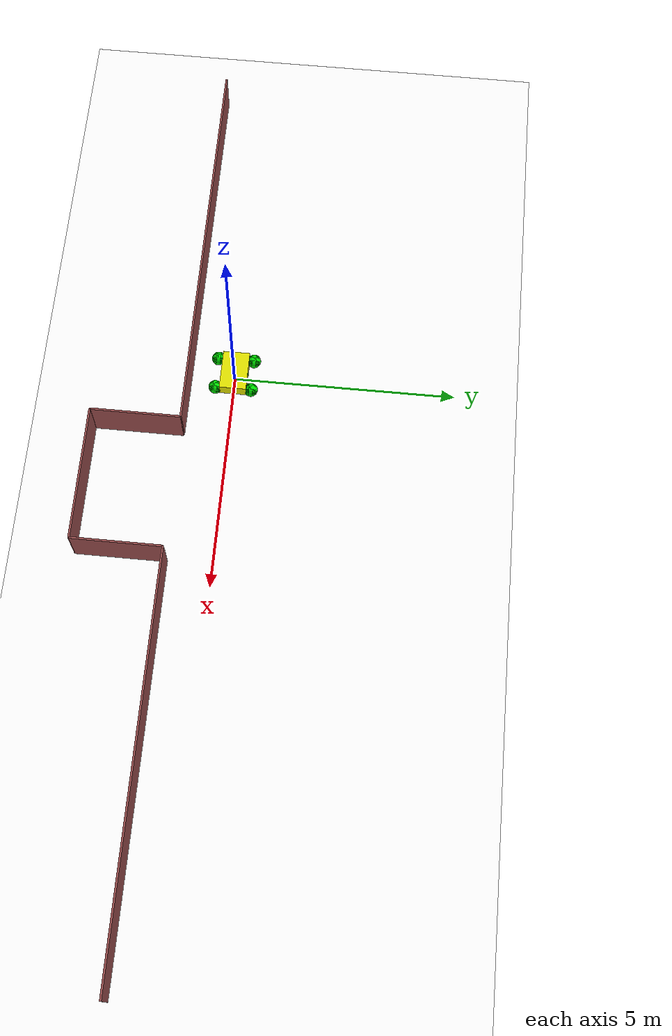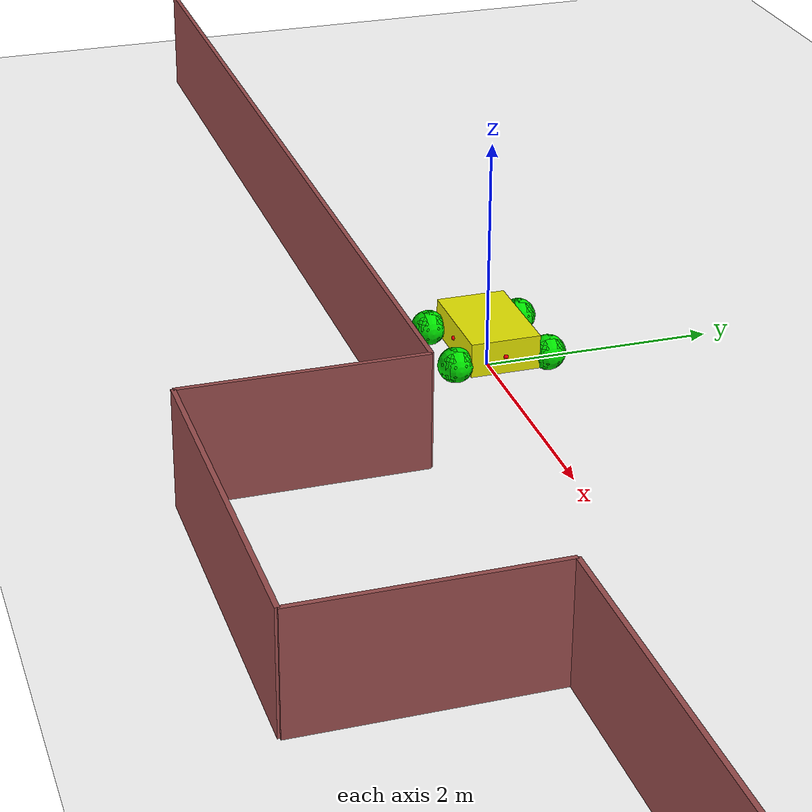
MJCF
<mujoco>
    <option gravity="0 0 -9.810"/>

    <!-- Robot Body -->
    <worldbody>
            <light diffuse="0.8 0.8 0.8" pos="0 0 100" dir="0 0 -1"/>
        <geom type="plane" size="20 20 0.1" rgba="1 1 1 1" material="grid"/>

        <!-- Base structure -->
        <body name="robot_body" pos="0 0 0.3" euler="0 90 0">
            <joint type="free"/>
            <geom type="box" size="0.15 0.3 0.45" rgba="0.9 0.9 0 1"/>
            <inertial pos="0 0 0.07" mass="4.2" diaginertia="0.0329 0.0378 0.0145"/>

            <!-- Wheels -->
            <!-- Front-Left Wheel -->
            <body pos="0.06 0.405 0.36" euler="90 0 0">
                <joint name="front_left_wheel" type="hinge" axis="0 0 -1"/>
                <geom type="sphere" size="0.15" rgba="0 0.9 0 1"/>
            </body>
            <!-- Front-Right Wheel -->
            <body pos="0.06 -0.405 0.36" euler="90 0 0">
                <joint name="front_right_wheel" type="hinge" axis="0 0 -1"/>
                <geom type="sphere" size="0.15" rgba="0 0.9 0 1"/>
            </body>
            <!-- Rear-Left Wheel -->
            <body pos="0.06 0.405 -0.36" euler="90 0 0">
                <joint name="rear_left_wheel" type="hinge" axis="0 0 -1"/>
                <geom type="sphere" size="0.15" rgba="0 0.9 0 1"/>
            </body>
            <!-- Rear-Right Wheel -->
            <body pos="0.06 -0.405 -0.36" euler="90 0 0">
                <joint name="rear_right_wheel" type="hinge" axis="0 0 -1"/>
                <geom type="sphere" size="0.15" rgba="0 0.9 0 1"/>
            </body>

            <!-- SIMULATED Wheels -->
            <!-- S Front-Left Wheel -->
            <body pos="0.06 0.405 0.36" euler="0 0 90">
                <joint name="SIM_front_left_wheel" type="hinge" axis="0 0 -1"/>
                <geom type="sphere" size="0.15" rgba="0 0.9 0 1"/>
            </body>

            <!-- S Front-Right Wheel -->
            <body pos="0.06 -0.405 0.36" euler="0 0 90">
                <joint name="SIM_front_right_wheel" type="hinge" axis="0 0 -1"/>
                <geom type="sphere" size="0.15" rgba="0 0.9 0 1"/>
            </body>

            <!-- S Rear-Left Wheel -->
            <body pos="0.06 0.405 -0.36" euler="0 0 90">
                <joint name="SIM_rear_left_wheel" type="hinge" axis="0 0 -1"/>
                <geom type="sphere" size="0.15" rgba="0 0.9 0 1"/>
            </body>

            <!-- S Rear-Right Wheel -->
            <body pos="0.06 -0.405 -0.36" euler="0 0 90">
                <joint name="SIM_rear_right_wheel" type="hinge" axis="0 0 -1"/>
                <geom type="sphere" size="0.15" rgba="0 0.9 0 1"/>
            </body>

            <!-- Ultrasonic Sensors -->
            <!-- Front Sensor -->
            <site name="sito_sensor_front" pos="0 0 0.45" size="0.02 40" rgba="1 0 0 1" euler="0 0.9 0"/>
            <!-- Rear Sensor -->
            <site name="sito_sensor_rear" pos="0 0 -0.45" size="0.02 40" rgba="1 0 0 1" euler="180 0.9 0"/>
            <!-- Left Sensor -->
            <site name="sito_sensor_left" pos="0 0.3 0" size="0.02 40" rgba="0 0.9 0  1" euler="-90 0.9 0"/>
            <!-- Right Sensor -->
            <site name="sito_sensor_right" pos="0 -0.3 0" size="0.02 40" rgba="1 0 0 1" euler="90 0.9 0"/>

        </body>

        <!-- Walls for Testing -->
        <body name="wall_A" pos="-3 -1 0.5" euler="0 0 90">
            <geom name="wall_geom_A" type="box" size="0.02 4.5 0.5" rgba="0.6 0.3 0.3 1"/>
        </body>

        <body name="wall_B" pos="1.5 -2 0.5" euler="0 0 0">
            <geom name="wall_geom_B" type="box" size="0.02 1 0.5" rgba="0.6 0.3 0.3 1"/>
        </body>

        <body name="wall_C" pos="3 -3 0.5" euler="0 0 90">
            <geom name="wall_geom_C" type="box" size="0.02 1.5 0.5" rgba="0.6 0.3 0.3 1"/>
        </body>

        <body name="wall_D" pos="4.5 -2 0.5" euler="0 0 0">
            <geom name="wall_geom_D" type="box" size="0.02 1 0.5" rgba="0.6 0.3 0.3 1"/>
        </body>

        <body name="wall_E" pos="9 -1 0.5" euler="0 0 90">
            <geom name="wall_geom_E" type="box" size="0.02 4.5 0.5" rgba="0.6 0.3 0.3 1"/>
        </body>

    </worldbody>
    <actuator>

        <velocity name="FL_wheel" joint="front_left_wheel" kv="100"/>
        <velocity name="FR_wheel" joint="front_right_wheel" kv="100"/>
        <velocity name="RL_wheel" joint="rear_left_wheel" kv="100"/>
        <velocity name="RR_wheel" joint="rear_right_wheel" kv="100"/>

        <velocity name="SIM_FL_wheel" joint="SIM_front_left_wheel" kv="100"/>
        <velocity name="SIM_FR_wheel" joint="SIM_front_right_wheel" kv="100"/>
        <velocity name="SIM_RL_wheel" joint="SIM_rear_left_wheel" kv="100"/>
        <velocity name="SIM_RR_wheel" joint="SIM_rear_right_wheel" kv="100"/>

    </actuator>

    <asset>
        <texture name="grid" type="2d" builtin="checker" width="512" height="512" rgb1="1 1 1" rgb2="0 0 0"/>
        <material name="grid" texture="grid" texrepeat="10 10" reflectance="0.2"/>
    </asset>

    <!-- Sensors -->
    <sensor>
        <rangefinder name="sensor_front" site="sito_sensor_front"/>
        <rangefinder name="sensor_rear" site="sito_sensor_rear"/>
        <rangefinder name="sensor_left" site="sito_sensor_left"/>
        <rangefinder name="sensor_right" site="sito_sensor_right"/>
    </sensor>
</mujoco>
